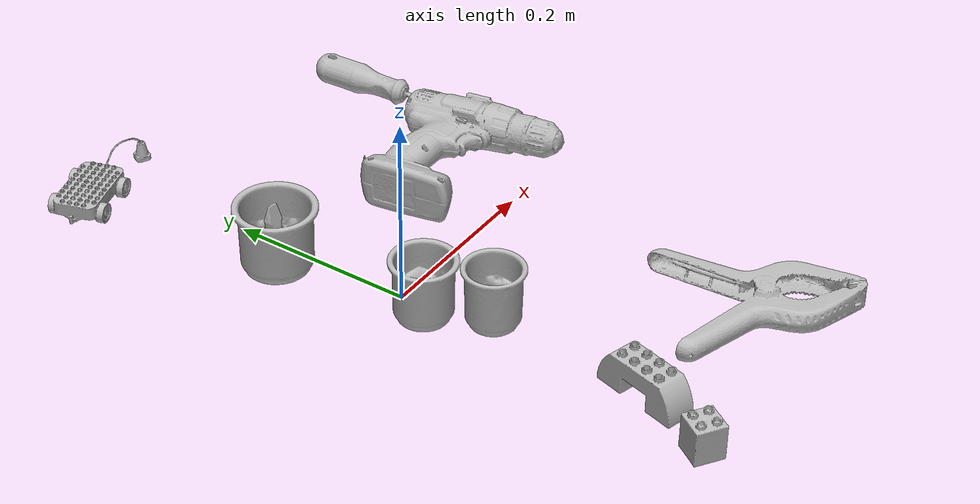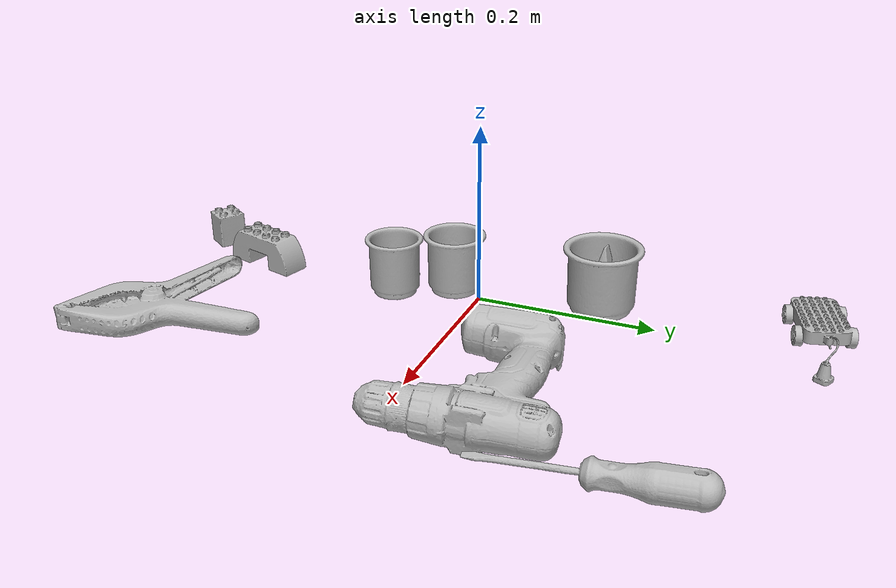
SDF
<sdf version="1.4">
  <world name="default">
    <light name="light1" type="point">
      <pose>0 0 1 0 0 0</pose>
      <diffuse>3 3 3 1</diffuse>
      <specular>3 3 3 1</specular>
    </light>
    <light name="light2" type="point">
      <pose>0 0.5 2 0 0 0</pose>
      <diffuse>1 1 1 1</diffuse>
      <specular>1 1 1 1</specular>
    </light>
    <light name="light3" type="point">
      <pose>0 0.5 2 0 0 0</pose>
      <diffuse>3 3 3 1</diffuse>
      <specular>3 3 3 1</specular>
    </light>
    <scene>
      <ambient>0.7 0.7 0.7</ambient>
    </scene>
    <model name="cup1">
      <link name="link_cup1">
        <collision name="default">
          <geometry>
            <mesh>
              <uri>model://d_cups/collision_meshes/collision.obj</uri>
              <scale>1.0 1.0 1.0</scale>
            </mesh>
          </geometry>
          <surface>
            <friction>
              <ode>
                <mu>0.5</mu>
                <mu2>0.5</mu2>
              </ode>
            </friction>
          <contact>
        <ode>
            <max_vel>0</max_vel>
            <min_depth>0.0001</min_depth>
            <kp>1e8</kp>
        </ode>
    </contact></surface>
        </collision>
        <visual name="default">
          <geometry>
            <mesh>
              <uri>model://d_cups/visual_meshes/visual.dae</uri>
              <scale>1.0 1.0 1.0</scale>
            </mesh>
          </geometry>
        </visual>
        <inertial>
          <mass>0.04943045228719711</mass>
          <pose>0.0008068052702583373 0.0019117395859211683 -0.0022666507866233587 0.2401104468273406 -0.24710716259907536 0.594298245500967</pose>
          <inertia>
            <ixx>4.1384912e-05</ixx>
            <iyy>4.1265153e-05</iyy>
            <izz>3.7460377e-05</izz>
            <ixy>0</ixy>
            <ixz>0</ixz>
            <iyz>0</iyz>
          </inertia>
        </inertial>
      </link>
      <pose>-0.011994747444987297 -0.034657612442970276 0.034658901393413544 -1.035181001770675e-05 1.8065216491105056e-05 -0.3790332169611566</pose>
    </model>
    <model name="cup2">
      <link name="link_cup2">
        <collision name="default">
          <geometry>
            <mesh>
              <uri>model://c_cups/collision_meshes/collision.obj</uri>
              <scale>1.0 1.0 1.0</scale>
            </mesh>
          </geometry>
          <surface>
            <friction>
              <ode>
                <mu>0.5</mu>
                <mu2>0.5</mu2>
              </ode>
            </friction>
          <contact>
        <ode>
            <max_vel>0</max_vel>
            <min_depth>0.0001</min_depth>
            <kp>1e8</kp>
        </ode>
    </contact></surface>
        </collision>
        <visual name="default">
          <geometry>
            <mesh>
              <uri>model://c_cups/visual_meshes/visual.dae</uri>
              <scale>1.0 1.0 1.0</scale>
            </mesh>
          </geometry>
        </visual>
        <inertial>
          <mass>0.02161477506160736</mass>
          <pose>0.0007237254758365452 0.002015391131862998 -0.0012750980677083135 0.3021577101392444 0.013461522825774588 -0.08771822086046323</pose>
          <inertia>
            <ixx>1.607462e-05</ixx>
            <iyy>1.5790554e-05</iyy>
            <izz>1.4215883e-05</izz>
            <ixy>0</ixy>
            <ixz>0</ixz>
            <iyz>0</iyz>
          </inertia>
        </inertial>
      </link>
      <pose>0.018050918355584145 -0.09559788554906845 0.03345917910337448 8.682273084266274e-06 8.890441445862076e-06 -1.6417076131403205</pose>
    </model>
    <model name="cup3">
      <link name="link_cup3">
        <collision name="default">
          <geometry>
            <mesh>
              <uri>model://g_cups/collision_meshes/collision.obj</uri>
              <scale>1.0 1.0 1.0</scale>
            </mesh>
          </geometry>
          <surface>
            <friction>
              <ode>
                <mu>0.5</mu>
                <mu2>0.5</mu2>
              </ode>
            </friction>
          <contact>
        <ode>
            <max_vel>0</max_vel>
            <min_depth>0.0001</min_depth>
            <kp>1e8</kp>
        </ode>
    </contact></surface>
        </collision>
        <visual name="default">
          <geometry>
            <mesh>
              <uri>model://g_cups/visual_meshes/visual.dae</uri>
              <scale>1.0 1.0 1.0</scale>
            </mesh>
          </geometry>
        </visual>
        <inertial>
          <mass>0.04413851350545883</mass>
          <pose>-0.0007946275873109698 -4.206433004583232e-05 -0.002132937777787447 -0.2138199678327952 -0.31410615416341514 0.3111935262320568</pose>
          <inertia>
            <ixx>5.151955e-05</ixx>
            <iyy>5.1344283e-05</iyy>
            <izz>5.3365377e-05</izz>
            <ixy>0</ixy>
            <ixz>0</ixz>
            <iyz>0</iyz>
          </inertia>
        </inertial>
      </link>
      <pose>-0.02829204685986042 0.1327279806137085 0.037202946841716766 3.7802668514169365e-06 1.01508695528828e-05 -1.95932909365923</pose>
    </model>
    <model name="toy1">
      <link name="link_toy1">
        <collision name="default">
          <geometry>
            <mesh>
              <uri>model://e_lego_duplo/collision_meshes/collision.obj</uri>
              <scale>1.0 1.0 1.0</scale>
            </mesh>
          </geometry>
          <surface>
            <friction>
              <ode>
                <mu>0.5</mu>
                <mu2>0.5</mu2>
              </ode>
            </friction>
          <contact>
        <ode>
            <max_vel>0</max_vel>
            <min_depth>0.0001</min_depth>
            <kp>1e8</kp>
        </ode>
    </contact></surface>
        </collision>
        <visual name="default">
          <geometry>
            <mesh>
              <uri>model://e_lego_duplo/visual_meshes/visual.dae</uri>
              <scale>1.0 1.0 1.0</scale>
            </mesh>
          </geometry>
        </visual>
        <inertial>
          <mass>0.08806774020195007</mass>
          <pose>0.0003256051568314433 0.00023485405836254358 0.0019521453650668263 -0.02256777049150226 -6.824370740412915e-05 -0.00762515400873393</pose>
          <inertia>
            <ixx>1.8365032e-05</ixx>
            <iyy>7.537481e-05</iyy>
            <izz>7.3399904e-05</izz>
            <ixy>0</ixy>
            <ixz>0</ixz>
            <iyz>0</iyz>
          </inertia>
        </inertial>
      </link>
      <pose>0.005562241189181805 -0.2722717225551605 0.021809011697769165 1.2131929049707338e-06 -1.2148873493255768e-07 -1.8392107766788872</pose>
    </model>
    <model name="toy2">
      <link name="link_toy2">
        <collision name="default">
          <geometry>
            <mesh>
              <uri>model://b_lego_duplo/collision_meshes/collision.obj</uri>
              <scale>1.0 1.0 1.0</scale>
            </mesh>
          </geometry>
          <surface>
            <friction>
              <ode>
                <mu>0.5</mu>
                <mu2>0.5</mu2>
              </ode>
            </friction>
          <contact>
        <ode>
            <max_vel>0</max_vel>
            <min_depth>0.0001</min_depth>
            <kp>1e8</kp>
        </ode>
    </contact></surface>
        </collision>
        <visual name="default">
          <geometry>
            <mesh>
              <uri>model://b_lego_duplo/visual_meshes/visual.dae</uri>
              <scale>1.0 1.0 1.0</scale>
            </mesh>
          </geometry>
        </visual>
        <inertial>
          <mass>0.04734363779425621</mass>
          <pose>-0.00011053025809815153 -9.15254986466607e-06 0.0019294298253953457 -0.03749543151759021 -0.02635344242756168 0.4519151706388912</pose>
          <inertia>
            <ixx>9.689229e-06</ixx>
            <iyy>9.754364e-06</iyy>
            <izz>8.632791e-06</izz>
            <ixy>0</ixy>
            <ixz>0</ixz>
            <iyz>0</iyz>
          </inertia>
        </inertial>
      </link>
      <pose>-0.0326363705098629 -0.35394567251205444 0.021814996376633644 -2.8531090840862486e-07 5.30652881443935e-07 0.9774470402287531</pose>
    </model>
    <model name="toy3">
      <link name="link_toy3">
        <collision name="default">
          <geometry>
            <mesh>
              <uri>model://g_lego_duplo/collision_meshes/collision.obj</uri>
              <scale>0.5 0.5 0.5</scale>
            </mesh>
          </geometry>
          <surface>
            <friction>
              <ode>
                <mu>0.5</mu>
                <mu2>0.5</mu2>
              </ode>
            </friction>
          <contact>
        <ode>
            <max_vel>0</max_vel>
            <min_depth>0.0001</min_depth>
            <kp>1e8</kp>
        </ode>
    </contact></surface>
        </collision>
        <visual name="default">
          <geometry>
            <mesh>
              <uri>model://g_lego_duplo/visual_meshes/visual.dae</uri>
              <scale>0.5 0.5 0.5</scale>
            </mesh>
          </geometry>
        </visual>
        <inertial>
          <mass>0.0549229197204113</mass>
          <pose>-0.02502383477985859 0.0008777315961197019 0.0019403378246352077 0.010963030367844774 0.03810824354215502 -0.09653013034360637</pose>
          <inertia>
            <ixx>1.989599e-05</ixx>
            <iyy>6.0152015e-05</iyy>
            <izz>7.525238e-05</izz>
            <ixy>0</ixy>
            <ixz>0</ixz>
            <iyz>0</iyz>
          </inertia>
        </inertial>
      </link>
      <pose>-0.025781910866498947 0.3671404719352722 0.014980612322688103 -7.46194561010503e-05 -0.0034920412711112628 0.28633814101762434</pose>
    </model>
    <model name="toy4">
      <link name="link_toy4">
        <collision name="default">
          <geometry>
            <mesh>
              <uri>model://e_toy_airplane/collision_meshes/collision.obj</uri>
              <scale>1.0 1.0 1.0</scale>
            </mesh>
          </geometry>
          <surface>
            <friction>
              <ode>
                <mu>0.5</mu>
                <mu2>0.5</mu2>
              </ode>
            </friction>
          <contact>
        <ode>
            <max_vel>0</max_vel>
            <min_depth>0.0001</min_depth>
            <kp>1e8</kp>
        </ode>
    </contact></surface>
        </collision>
        <visual name="default">
          <geometry>
            <mesh>
              <uri>model://e_toy_airplane/visual_meshes/visual.dae</uri>
              <scale>1.0 1.0 1.0</scale>
            </mesh>
          </geometry>
        </visual>
        <inertial>
          <mass>0.02949252724647522</mass>
          <pose>0.0001174047210952267 -2.248294731543865e-05 -0.011187205091118813 0.00551852159670192 0.009228270522190251 0.15041692690710914</pose>
          <inertia>
            <ixx>9.0014555e-06</ixx>
            <iyy>8.909378e-06</iyy>
            <izz>2.7052915e-06</izz>
            <ixy>0</ixy>
            <ixz>0</ixz>
            <iyz>0</iyz>
          </inertia>
        </inertial>
      </link>
      <pose>-0.030234873294830322 0.13423925638198853 0.041875503957271576 -0.0006077521881348822 0.008682906421991375 1.3283351440908866</pose>
    </model>
    <model name="hardware1">
      <link name="link_hardware1">
        <collision name="default">
          <geometry>
            <mesh>
              <uri>model://power_drill/collision_meshes/collision.obj</uri>
              <scale>1.0 1.0 1.0</scale>
            </mesh>
          </geometry>
          <surface>
            <friction>
              <ode>
                <mu>0.5</mu>
                <mu2>0.5</mu2>
              </ode>
            </friction>
          <contact>
        <ode>
            <max_vel>0</max_vel>
            <min_depth>0.0001</min_depth>
            <kp>1e8</kp>
        </ode>
    </contact></surface>
        </collision>
        <visual name="default">
          <geometry>
            <mesh>
              <uri>model://power_drill/visual_meshes/visual.dae</uri>
              <scale>1.0 1.0 1.0</scale>
            </mesh>
          </geometry>
        </visual>
        <inertial>
          <mass>0.4622694253921509</mass>
          <pose>-0.014780544675886631 0.014369423501193523 0.0012414170196279883 0.0046091653592492164 0.00407302392026691 -0.1836269379856391</pose>
          <inertia>
            <ixx>0.0018837696</ixx>
            <iyy>0.00074116525</iyy>
            <izz>0.0024878501</izz>
            <ixy>0</ixy>
            <ixz>0</ixz>
            <iyz>0</iyz>
          </inertia>
        </inertial>
      </link>
      <pose>0.20449292659759521 0.07565248012542725 0.027312446385622025 -0.03030603116489269 -0.04725291968811698 -1.4527526668527682</pose>
    </model>
    <model name="hardware2">
      <link name="link_hardware2">
        <collision name="default">
          <geometry>
            <mesh>
              <uri>model://flat_screwdriver/collision_meshes/collision.obj</uri>
              <scale>1.0 1.0 1.0</scale>
            </mesh>
          </geometry>
          <surface>
            <friction>
              <ode>
                <mu>0.5</mu>
                <mu2>0.5</mu2>
              </ode>
            </friction>
          <contact>
        <ode>
            <max_vel>0</max_vel>
            <min_depth>0.0001</min_depth>
            <kp>1e8</kp>
        </ode>
    </contact></surface>
        </collision>
        <visual name="default">
          <geometry>
            <mesh>
              <uri>model://flat_screwdriver/visual_meshes/visual.dae</uri>
              <scale>1.0 1.0 1.0</scale>
            </mesh>
          </geometry>
        </visual>
        <inertial>
          <mass>0.07028686255216599</mass>
          <pose>-0.0489187091588974 -0.0006576801533810794 -0.0006140916375443339 -0.5613212056153659 -0.0032337294395619258 0.006982277044942129</pose>
          <inertia>
            <ixx>8.3043415e-06</ixx>
            <iyy>0.00010542549</iyy>
            <izz>0.00010537667</izz>
            <ixy>0</ixy>
            <ixz>0</ixz>
            <iyz>0</iyz>
          </inertia>
        </inertial>
      </link>
      <pose>0.28880077600479126 0.20883648097515106 0.015338575467467308 -0.2144077956956412 0.04069606170324277 -1.4873055282594418</pose>
    </model>
    <model name="hardware3">
      <link name="link_hardware3">
        <collision name="default">
          <geometry>
            <mesh>
              <uri>model://extra_large_clamp/collision_meshes/collision.obj</uri>
              <scale>1.0 1.0 1.0</scale>
            </mesh>
          </geometry>
          <surface>
            <friction>
              <ode>
                <mu>0.5</mu>
                <mu2>0.5</mu2>
              </ode>
            </friction>
          <contact>
        <ode>
            <max_vel>0</max_vel>
            <min_depth>0.0001</min_depth>
            <kp>1e8</kp>
        </ode>
    </contact></surface>
        </collision>
        <visual name="default">
          <geometry>
            <mesh>
              <uri>model://extra_large_clamp/visual_meshes/visual.dae</uri>
              <scale>1.0 1.0 1.0</scale>
            </mesh>
          </geometry>
        </visual>
        <inertial>
          <mass>0.19051048159599304</mass>
          <pose>0.0032320222817361355 -7.615413051098585e-05 0.0003172157157678157 0.013786989477745152 -0.0005066809054022428 -0.0008935736893705532</pose>
          <inertia>
            <ixx>0.00028954487</ixx>
            <iyy>0.0004985067</iyy>
            <izz>0.0007616155</izz>
            <ixy>0</ixy>
            <ixz>0</ixz>
            <iyz>0</iyz>
          </inertia>
        </inertial>
      </link>
      <pose>0.17979229986667633 -0.30354052782058716 0.018067818135023117 -0.024372545864341965 8.214872514376438e-05 -0.8768066544826524</pose>
    </model>
  <physics type="ode">
      <max_contacts>50</max_contacts>
      <ode>
        <solver>
          <type>quick</type>
          <iters>75</iters>
        </solver>
        <constraints>
          <contact_max_correcting_vel>0</contact_max_correcting_vel>
          <contact_surface_layer>0</contact_surface_layer>
        </constraints>
      </ode>
    </physics></world>
</sdf>
